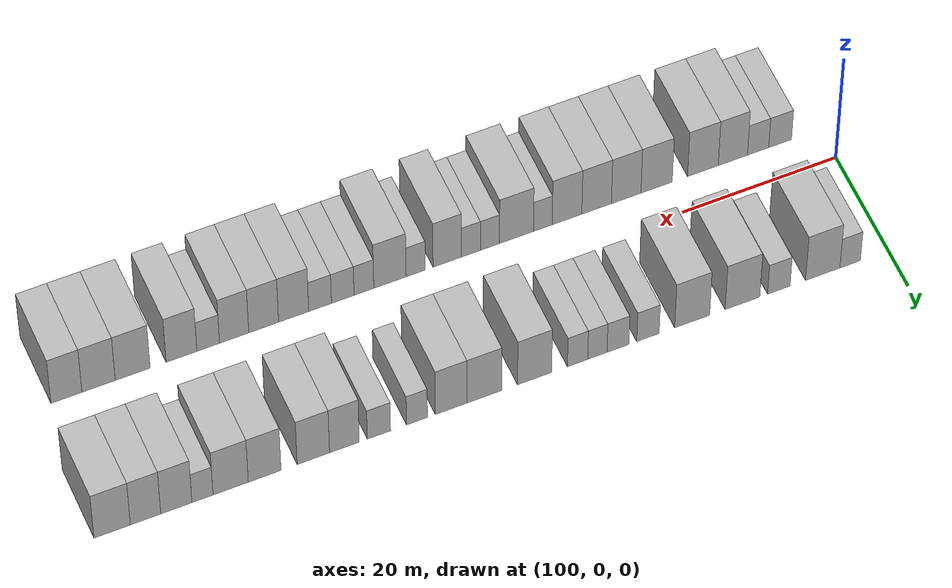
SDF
<sdf version="1.6">
 <world name="default">
  <model name="building_24">
   <static>1</static>
   <pose>104.9488 9.5000 0 0.000000 0.000000 1.570796</pose>
   <link name="link">
    <pose>0 0 3.00 0 0 0</pose>
    <collision name="collision"><geometry><box><size>10.0000 2.6455 6.0000</size></box></geometry></collision>
    <visual name="visual">
     <cast_shadows>0</cast_shadows>
     <geometry><box><size>10.0000 2.6455 6.0000</size></box></geometry>
     <material>
      <script>
       <uri>model://HANNAS_wall/materials/scripts</uri>
       <uri>model://HANNAS_wall/materials/textures</uri>
       <name>vrc/HANNAS_wall</name>
      </script>
     </material>
    </visual>
   </link>
  </model>
  <model name="building_25">
   <static>1</static>
   <pose>108.4998 9.5000 0 0.000000 0.000000 1.570796</pose>
   <link name="link">
    <pose>0 0 4.50 0 0 0</pose>
    <collision name="collision"><geometry><box><size>10.0000 4.4565 9.0000</size></box></geometry></collision>
    <visual name="visual">
     <cast_shadows>0</cast_shadows>
     <geometry><box><size>10.0000 4.4565 9.0000</size></box></geometry>
     <material>
      <script>
       <uri>model://HANNAS_wall/materials/scripts</uri>
       <uri>model://HANNAS_wall/materials/textures</uri>
       <name>vrc/HANNAS_wall</name>
      </script>
     </material>
    </visual>
   </link>
  </model>
  <model name="building_26">
   <static>1</static>
   <pose>114.1830 9.5000 0 0.000000 0.000000 1.570796</pose>
   <link name="link">
    <pose>0 0 3.00 0 0 0</pose>
    <collision name="collision"><geometry><box><size>10.0000 2.9098 6.0000</size></box></geometry></collision>
    <visual name="visual">
     <cast_shadows>0</cast_shadows>
     <geometry><box><size>10.0000 2.9098 6.0000</size></box></geometry>
     <material>
      <script>
       <uri>model://HANNAS_wall/materials/scripts</uri>
       <uri>model://HANNAS_wall/materials/textures</uri>
       <name>vrc/HANNAS_wall</name>
      </script>
     </material>
    </visual>
   </link>
  </model>
  <model name="building_27">
   <static>1</static>
   <pose>118.8690 9.5000 0 0.000000 0.000000 1.570796</pose>
   <link name="link">
    <pose>0 0 4.50 0 0 0</pose>
    <collision name="collision"><geometry><box><size>10.0000 4.4622 9.0000</size></box></geometry></collision>
    <visual name="visual">
     <cast_shadows>0</cast_shadows>
     <geometry><box><size>10.0000 4.4622 9.0000</size></box></geometry>
     <material>
      <script>
       <uri>model://HANNAS_wall/materials/scripts</uri>
       <uri>model://HANNAS_wall/materials/textures</uri>
       <name>vrc/HANNAS_wall</name>
      </script>
     </material>
    </visual>
   </link>
  </model>
  <model name="building_28">
   <static>1</static>
   <pose>125.3372 9.5000 0 0.000000 0.000000 1.570796</pose>
   <link name="link">
    <pose>0 0 4.50 0 0 0</pose>
    <collision name="collision"><geometry><box><size>10.0000 4.4742 9.0000</size></box></geometry></collision>
    <visual name="visual">
     <cast_shadows>0</cast_shadows>
     <geometry><box><size>10.0000 4.4742 9.0000</size></box></geometry>
     <material>
      <script>
       <uri>model://HANNAS_wall/materials/scripts</uri>
       <uri>model://HANNAS_wall/materials/textures</uri>
       <name>vrc/HANNAS_wall</name>
      </script>
     </material>
    </visual>
   </link>
  </model>
  <model name="building_29">
   <static>1</static>
   <pose>131.0073 9.5000 0 0.000000 0.000000 1.570796</pose>
   <link name="link">
    <pose>0 0 3.00 0 0 0</pose>
    <collision name="collision"><geometry><box><size>10.0000 2.8662 6.0000</size></box></geometry></collision>
    <visual name="visual">
     <cast_shadows>0</cast_shadows>
     <geometry><box><size>10.0000 2.8662 6.0000</size></box></geometry>
     <material>
      <script>
       <uri>model://HANNAS_wall/materials/scripts</uri>
       <uri>model://HANNAS_wall/materials/textures</uri>
       <name>vrc/HANNAS_wall</name>
      </script>
     </material>
    </visual>
   </link>
  </model>
  <model name="building_30">
   <static>1</static>
   <pose>134.8333 9.5000 0 0.000000 0.000000 1.570796</pose>
   <link name="link">
    <pose>0 0 3.00 0 0 0</pose>
    <collision name="collision"><geometry><box><size>10.0000 2.7858 6.0000</size></box></geometry></collision>
    <visual name="visual">
     <cast_shadows>0</cast_shadows>
     <geometry><box><size>10.0000 2.7858 6.0000</size></box></geometry>
     <material>
      <script>
       <uri>model://HANNAS_wall/materials/scripts</uri>
       <uri>model://HANNAS_wall/materials/textures</uri>
       <name>vrc/HANNAS_wall</name>
      </script>
     </material>
    </visual>
   </link>
  </model>
  <model name="building_31">
   <static>1</static>
   <pose>137.4578 9.5000 0 0.000000 0.000000 1.570796</pose>
   <link name="link">
    <pose>0 0 3.00 0 0 0</pose>
    <collision name="collision"><geometry><box><size>10.0000 2.4632 6.0000</size></box></geometry></collision>
    <visual name="visual">
     <cast_shadows>0</cast_shadows>
     <geometry><box><size>10.0000 2.4632 6.0000</size></box></geometry>
     <material>
      <script>
       <uri>model://HANNAS_wall/materials/scripts</uri>
       <uri>model://HANNAS_wall/materials/textures</uri>
       <name>vrc/HANNAS_wall</name>
      </script>
     </material>
    </visual>
   </link>
  </model>
  <model name="building_32">
   <static>1</static>
   <pose>139.9773 9.5000 0 0.000000 0.000000 1.570796</pose>
   <link name="link">
    <pose>0 0 3.00 0 0 0</pose>
    <collision name="collision"><geometry><box><size>10.0000 2.5758 6.0000</size></box></geometry></collision>
    <visual name="visual">
     <cast_shadows>0</cast_shadows>
     <geometry><box><size>10.0000 2.5758 6.0000</size></box></geometry>
     <material>
      <script>
       <uri>model://HANNAS_wall/materials/scripts</uri>
       <uri>model://HANNAS_wall/materials/textures</uri>
       <name>vrc/HANNAS_wall</name>
      </script>
     </material>
    </visual>
   </link>
  </model>
  <model name="building_33">
   <static>1</static>
   <pose>145.4262 9.5000 0 0.000000 0.000000 1.570796</pose>
   <link name="link">
    <pose>0 0 4.50 0 0 0</pose>
    <collision name="collision"><geometry><box><size>10.0000 4.3219 9.0000</size></box></geometry></collision>
    <visual name="visual">
     <cast_shadows>0</cast_shadows>
     <geometry><box><size>10.0000 4.3219 9.0000</size></box></geometry>
     <material>
      <script>
       <uri>model://HANNAS_wall/materials/scripts</uri>
       <uri>model://HANNAS_wall/materials/textures</uri>
       <name>vrc/HANNAS_wall</name>
      </script>
     </material>
    </visual>
   </link>
  </model>
  <model name="building_34">
   <static>1</static>
   <pose>151.7672 9.5000 0 0.000000 0.000000 1.570796</pose>
   <link name="link">
    <pose>0 0 4.50 0 0 0</pose>
    <collision name="collision"><geometry><box><size>10.0000 4.3601 9.0000</size></box></geometry></collision>
    <visual name="visual">
     <cast_shadows>0</cast_shadows>
     <geometry><box><size>10.0000 4.3601 9.0000</size></box></geometry>
     <material>
      <script>
       <uri>model://HANNAS_wall/materials/scripts</uri>
       <uri>model://HANNAS_wall/materials/textures</uri>
       <name>vrc/HANNAS_wall</name>
      </script>
     </material>
    </visual>
   </link>
  </model>
  <model name="building_35">
   <static>1</static>
   <pose>155.9429 9.5000 0 0.000000 0.000000 1.570796</pose>
   <link name="link">
    <pose>0 0 4.50 0 0 0</pose>
    <collision name="collision"><geometry><box><size>10.0000 3.9913 9.0000</size></box></geometry></collision>
    <visual name="visual">
     <cast_shadows>0</cast_shadows>
     <geometry><box><size>10.0000 3.9913 9.0000</size></box></geometry>
     <material>
      <script>
       <uri>model://HANNAS_wall/materials/scripts</uri>
       <uri>model://HANNAS_wall/materials/textures</uri>
       <name>vrc/HANNAS_wall</name>
      </script>
     </material>
    </visual>
   </link>
  </model>
  <model name="building_36">
   <static>1</static>
   <pose>160.2535 9.5000 0 0.000000 0.000000 1.570796</pose>
   <link name="link">
    <pose>0 0 3.00 0 0 0</pose>
    <collision name="collision"><geometry><box><size>10.0000 2.6299 6.0000</size></box></geometry></collision>
    <visual name="visual">
     <cast_shadows>0</cast_shadows>
     <geometry><box><size>10.0000 2.6299 6.0000</size></box></geometry>
     <material>
      <script>
       <uri>model://HANNAS_wall/materials/scripts</uri>
       <uri>model://HANNAS_wall/materials/textures</uri>
       <name>vrc/HANNAS_wall</name>
      </script>
     </material>
    </visual>
   </link>
  </model>
  <model name="building_37">
   <static>1</static>
   <pose>165.0209 9.5000 0 0.000000 0.000000 1.570796</pose>
   <link name="link">
    <pose>0 0 3.00 0 0 0</pose>
    <collision name="collision"><geometry><box><size>10.0000 2.9050 6.0000</size></box></geometry></collision>
    <visual name="visual">
     <cast_shadows>0</cast_shadows>
     <geometry><box><size>10.0000 2.9050 6.0000</size></box></geometry>
     <material>
      <script>
       <uri>model://HANNAS_wall/materials/scripts</uri>
       <uri>model://HANNAS_wall/materials/textures</uri>
       <name>vrc/HANNAS_wall</name>
      </script>
     </material>
    </visual>
   </link>
  </model>
  <model name="building_38">
   <static>1</static>
   <pose>169.3303 9.5000 0 0.000000 0.000000 1.570796</pose>
   <link name="link">
    <pose>0 0 4.50 0 0 0</pose>
    <collision name="collision"><geometry><box><size>10.0000 3.7138 9.0000</size></box></geometry></collision>
    <visual name="visual">
     <cast_shadows>0</cast_shadows>
     <geometry><box><size>10.0000 3.7138 9.0000</size></box></geometry>
     <material>
      <script>
       <uri>model://HANNAS_wall/materials/scripts</uri>
       <uri>model://HANNAS_wall/materials/textures</uri>
       <name>vrc/HANNAS_wall</name>
      </script>
     </material>
    </visual>
   </link>
  </model>
  <model name="building_39">
   <static>1</static>
   <pose>173.2025 9.5000 0 0.000000 0.000000 1.570796</pose>
   <link name="link">
    <pose>0 0 4.50 0 0 0</pose>
    <collision name="collision"><geometry><box><size>10.0000 4.0307 9.0000</size></box></geometry></collision>
    <visual name="visual">
     <cast_shadows>0</cast_shadows>
     <geometry><box><size>10.0000 4.0307 9.0000</size></box></geometry>
     <material>
      <script>
       <uri>model://HANNAS_wall/materials/scripts</uri>
       <uri>model://HANNAS_wall/materials/textures</uri>
       <name>vrc/HANNAS_wall</name>
      </script>
     </material>
    </visual>
   </link>
  </model>
  <model name="building_40">
   <static>1</static>
   <pose>179.2493 9.5000 0 0.000000 0.000000 1.570796</pose>
   <link name="link">
    <pose>0 0 4.50 0 0 0</pose>
    <collision name="collision"><geometry><box><size>10.0000 4.0628 9.0000</size></box></geometry></collision>
    <visual name="visual">
     <cast_shadows>0</cast_shadows>
     <geometry><box><size>10.0000 4.0628 9.0000</size></box></geometry>
     <material>
      <script>
       <uri>model://HANNAS_wall/materials/scripts</uri>
       <uri>model://HANNAS_wall/materials/textures</uri>
       <name>vrc/HANNAS_wall</name>
      </script>
     </material>
    </visual>
   </link>
  </model>
  <model name="building_41">
   <static>1</static>
   <pose>183.4597 9.5000 0 0.000000 0.000000 1.570796</pose>
   <link name="link">
    <pose>0 0 4.50 0 0 0</pose>
    <collision name="collision"><geometry><box><size>10.0000 4.3580 9.0000</size></box></geometry></collision>
    <visual name="visual">
     <cast_shadows>0</cast_shadows>
     <geometry><box><size>10.0000 4.3580 9.0000</size></box></geometry>
     <material>
      <script>
       <uri>model://HANNAS_wall/materials/scripts</uri>
       <uri>model://HANNAS_wall/materials/textures</uri>
       <name>vrc/HANNAS_wall</name>
      </script>
     </material>
    </visual>
   </link>
  </model>
  <model name="building_42">
   <static>1</static>
   <pose>186.9390 9.5000 0 0.000000 0.000000 1.570796</pose>
   <link name="link">
    <pose>0 0 3.00 0 0 0</pose>
    <collision name="collision"><geometry><box><size>10.0000 2.6006 6.0000</size></box></geometry></collision>
    <visual name="visual">
     <cast_shadows>0</cast_shadows>
     <geometry><box><size>10.0000 2.6006 6.0000</size></box></geometry>
     <material>
      <script>
       <uri>model://HANNAS_wall/materials/scripts</uri>
       <uri>model://HANNAS_wall/materials/textures</uri>
       <name>vrc/HANNAS_wall</name>
      </script>
     </material>
    </visual>
   </link>
  </model>
  <model name="building_43">
   <static>1</static>
   <pose>190.1605 9.5000 0 0.000000 0.000000 1.570796</pose>
   <link name="link">
    <pose>0 0 4.50 0 0 0</pose>
    <collision name="collision"><geometry><box><size>10.0000 3.8426 9.0000</size></box></geometry></collision>
    <visual name="visual">
     <cast_shadows>0</cast_shadows>
     <geometry><box><size>10.0000 3.8426 9.0000</size></box></geometry>
     <material>
      <script>
       <uri>model://HANNAS_wall/materials/scripts</uri>
       <uri>model://HANNAS_wall/materials/textures</uri>
       <name>vrc/HANNAS_wall</name>
      </script>
     </material>
    </visual>
   </link>
  </model>
  <model name="building_44">
   <static>1</static>
   <pose>193.9498 9.5000 0 0.000000 0.000000 1.570796</pose>
   <link name="link">
    <pose>0 0 4.50 0 0 0</pose>
    <collision name="collision"><geometry><box><size>10.0000 3.7360 9.0000</size></box></geometry></collision>
    <visual name="visual">
     <cast_shadows>0</cast_shadows>
     <geometry><box><size>10.0000 3.7360 9.0000</size></box></geometry>
     <material>
      <script>
       <uri>model://HANNAS_wall/materials/scripts</uri>
       <uri>model://HANNAS_wall/materials/textures</uri>
       <name>vrc/HANNAS_wall</name>
      </script>
     </material>
    </visual>
   </link>
  </model>
  <model name="building_45">
   <static>1</static>
   <pose>198.0489 9.5000 0 0.000000 0.000000 1.570796</pose>
   <link name="link">
    <pose>0 0 4.50 0 0 0</pose>
    <collision name="collision"><geometry><box><size>10.0000 4.4622 9.0000</size></box></geometry></collision>
    <visual name="visual">
     <cast_shadows>0</cast_shadows>
     <geometry><box><size>10.0000 4.4622 9.0000</size></box></geometry>
     <material>
      <script>
       <uri>model://HANNAS_wall/materials/scripts</uri>
       <uri>model://HANNAS_wall/materials/textures</uri>
       <name>vrc/HANNAS_wall</name>
      </script>
     </material>
    </visual>
   </link>
  </model>
  <model name="building_71">
   <static>1</static>
   <pose>105.1992 -9.5000 0 0.000000 0.000000 1.570796</pose>
   <link name="link">
    <pose>0 0 3.00 0 0 0</pose>
    <collision name="collision"><geometry><box><size>10.0000 2.9920 6.0000</size></box></geometry></collision>
    <visual name="visual">
     <cast_shadows>0</cast_shadows>
     <geometry><box><size>10.0000 2.9920 6.0000</size></box></geometry>
     <material>
      <script>
       <uri>model://HANNAS_wall/materials/scripts</uri>
       <uri>model://HANNAS_wall/materials/textures</uri>
       <name>vrc/HANNAS_wall</name>
      </script>
     </material>
    </visual>
   </link>
  </model>
  <model name="building_72">
   <static>1</static>
   <pose>108.0806 -9.5000 0 0.000000 0.000000 1.570796</pose>
   <link name="link">
    <pose>0 0 3.00 0 0 0</pose>
    <collision name="collision"><geometry><box><size>10.0000 2.7708 6.0000</size></box></geometry></collision>
    <visual name="visual">
     <cast_shadows>0</cast_shadows>
     <geometry><box><size>10.0000 2.7708 6.0000</size></box></geometry>
     <material>
      <script>
       <uri>model://HANNAS_wall/materials/scripts</uri>
       <uri>model://HANNAS_wall/materials/textures</uri>
       <name>vrc/HANNAS_wall</name>
      </script>
     </material>
    </visual>
   </link>
  </model>
  <model name="building_73">
   <static>1</static>
   <pose>111.3793 -9.5000 0 0.000000 0.000000 1.570796</pose>
   <link name="link">
    <pose>0 0 4.50 0 0 0</pose>
    <collision name="collision"><geometry><box><size>10.0000 3.8265 9.0000</size></box></geometry></collision>
    <visual name="visual">
     <cast_shadows>0</cast_shadows>
     <geometry><box><size>10.0000 3.8265 9.0000</size></box></geometry>
     <material>
      <script>
       <uri>model://HANNAS_wall/materials/scripts</uri>
       <uri>model://HANNAS_wall/materials/textures</uri>
       <name>vrc/HANNAS_wall</name>
      </script>
     </material>
    </visual>
   </link>
  </model>
  <model name="building_74">
   <static>1</static>
   <pose>115.2952 -9.5000 0 0.000000 0.000000 1.570796</pose>
   <link name="link">
    <pose>0 0 4.50 0 0 0</pose>
    <collision name="collision"><geometry><box><size>10.0000 4.0053 9.0000</size></box></geometry></collision>
    <visual name="visual">
     <cast_shadows>0</cast_shadows>
     <geometry><box><size>10.0000 4.0053 9.0000</size></box></geometry>
     <material>
      <script>
       <uri>model://HANNAS_wall/materials/scripts</uri>
       <uri>model://HANNAS_wall/materials/textures</uri>
       <name>vrc/HANNAS_wall</name>
      </script>
     </material>
    </visual>
   </link>
  </model>
  <model name="building_75">
   <static>1</static>
   <pose>121.3328 -9.5000 0 0.000000 0.000000 1.570796</pose>
   <link name="link">
    <pose>0 0 4.50 0 0 0</pose>
    <collision name="collision"><geometry><box><size>10.0000 4.0700 9.0000</size></box></geometry></collision>
    <visual name="visual">
     <cast_shadows>0</cast_shadows>
     <geometry><box><size>10.0000 4.0700 9.0000</size></box></geometry>
     <material>
      <script>
       <uri>model://HANNAS_wall/materials/scripts</uri>
       <uri>model://HANNAS_wall/materials/textures</uri>
       <name>vrc/HANNAS_wall</name>
      </script>
     </material>
    </visual>
   </link>
  </model>
  <model name="building_76">
   <static>1</static>
   <pose>125.2840 -9.5000 0 0.000000 0.000000 1.570796</pose>
   <link name="link">
    <pose>0 0 4.50 0 0 0</pose>
    <collision name="collision"><geometry><box><size>10.0000 3.8323 9.0000</size></box></geometry></collision>
    <visual name="visual">
     <cast_shadows>0</cast_shadows>
     <geometry><box><size>10.0000 3.8323 9.0000</size></box></geometry>
     <material>
      <script>
       <uri>model://HANNAS_wall/materials/scripts</uri>
       <uri>model://HANNAS_wall/materials/textures</uri>
       <name>vrc/HANNAS_wall</name>
      </script>
     </material>
    </visual>
   </link>
  </model>
  <model name="building_77">
   <static>1</static>
   <pose>129.1165 -9.5000 0 0.000000 0.000000 1.570796</pose>
   <link name="link">
    <pose>0 0 4.50 0 0 0</pose>
    <collision name="collision"><geometry><box><size>10.0000 3.8327 9.0000</size></box></geometry></collision>
    <visual name="visual">
     <cast_shadows>0</cast_shadows>
     <geometry><box><size>10.0000 3.8327 9.0000</size></box></geometry>
     <material>
      <script>
       <uri>model://HANNAS_wall/materials/scripts</uri>
       <uri>model://HANNAS_wall/materials/textures</uri>
       <name>vrc/HANNAS_wall</name>
      </script>
     </material>
    </visual>
   </link>
  </model>
  <model name="building_78">
   <static>1</static>
   <pose>132.9467 -9.5000 0 0.000000 0.000000 1.570796</pose>
   <link name="link">
    <pose>0 0 4.50 0 0 0</pose>
    <collision name="collision"><geometry><box><size>10.0000 3.8278 9.0000</size></box></geometry></collision>
    <visual name="visual">
     <cast_shadows>0</cast_shadows>
     <geometry><box><size>10.0000 3.8278 9.0000</size></box></geometry>
     <material>
      <script>
       <uri>model://HANNAS_wall/materials/scripts</uri>
       <uri>model://HANNAS_wall/materials/textures</uri>
       <name>vrc/HANNAS_wall</name>
      </script>
     </material>
    </visual>
   </link>
  </model>
  <model name="building_79">
   <static>1</static>
   <pose>136.0624 -9.5000 0 0.000000 0.000000 1.570796</pose>
   <link name="link">
    <pose>0 0 3.00 0 0 0</pose>
    <collision name="collision"><geometry><box><size>10.0000 2.4036 6.0000</size></box></geometry></collision>
    <visual name="visual">
     <cast_shadows>0</cast_shadows>
     <geometry><box><size>10.0000 2.4036 6.0000</size></box></geometry>
     <material>
      <script>
       <uri>model://HANNAS_wall/materials/scripts</uri>
       <uri>model://HANNAS_wall/materials/textures</uri>
       <name>vrc/HANNAS_wall</name>
      </script>
     </material>
    </visual>
   </link>
  </model>
  <model name="building_80">
   <static>1</static>
   <pose>139.4486 -9.5000 0 0.000000 0.000000 1.570796</pose>
   <link name="link">
    <pose>0 0 4.50 0 0 0</pose>
    <collision name="collision"><geometry><box><size>10.0000 4.3690 9.0000</size></box></geometry></collision>
    <visual name="visual">
     <cast_shadows>0</cast_shadows>
     <geometry><box><size>10.0000 4.3690 9.0000</size></box></geometry>
     <material>
      <script>
       <uri>model://HANNAS_wall/materials/scripts</uri>
       <uri>model://HANNAS_wall/materials/textures</uri>
       <name>vrc/HANNAS_wall</name>
      </script>
     </material>
    </visual>
   </link>
  </model>
  <model name="building_81">
   <static>1</static>
   <pose>142.8561 -9.5000 0 0.000000 0.000000 1.570796</pose>
   <link name="link">
    <pose>0 0 3.00 0 0 0</pose>
    <collision name="collision"><geometry><box><size>10.0000 2.4460 6.0000</size></box></geometry></collision>
    <visual name="visual">
     <cast_shadows>0</cast_shadows>
     <geometry><box><size>10.0000 2.4460 6.0000</size></box></geometry>
     <material>
      <script>
       <uri>model://HANNAS_wall/materials/scripts</uri>
       <uri>model://HANNAS_wall/materials/textures</uri>
       <name>vrc/HANNAS_wall</name>
      </script>
     </material>
    </visual>
   </link>
  </model>
  <model name="building_82">
   <static>1</static>
   <pose>145.2942 -9.5000 0 0.000000 0.000000 1.570796</pose>
   <link name="link">
    <pose>0 0 3.00 0 0 0</pose>
    <collision name="collision"><geometry><box><size>10.0000 2.4302 6.0000</size></box></geometry></collision>
    <visual name="visual">
     <cast_shadows>0</cast_shadows>
     <geometry><box><size>10.0000 2.4302 6.0000</size></box></geometry>
     <material>
      <script>
       <uri>model://HANNAS_wall/materials/scripts</uri>
       <uri>model://HANNAS_wall/materials/textures</uri>
       <name>vrc/HANNAS_wall</name>
      </script>
     </material>
    </visual>
   </link>
  </model>
  <model name="building_83">
   <static>1</static>
   <pose>148.3256 -9.5000 0 0.000000 0.000000 1.570796</pose>
   <link name="link">
    <pose>0 0 4.50 0 0 0</pose>
    <collision name="collision"><geometry><box><size>10.0000 3.6325 9.0000</size></box></geometry></collision>
    <visual name="visual">
     <cast_shadows>0</cast_shadows>
     <geometry><box><size>10.0000 3.6325 9.0000</size></box></geometry>
     <material>
      <script>
       <uri>model://HANNAS_wall/materials/scripts</uri>
       <uri>model://HANNAS_wall/materials/textures</uri>
       <name>vrc/HANNAS_wall</name>
      </script>
     </material>
    </visual>
   </link>
  </model>
  <model name="building_84">
   <static>1</static>
   <pose>152.3566 -9.5000 0 0.000000 0.000000 1.570796</pose>
   <link name="link">
    <pose>0 0 3.00 0 0 0</pose>
    <collision name="collision"><geometry><box><size>10.0000 2.4294 6.0000</size></box></geometry></collision>
    <visual name="visual">
     <cast_shadows>0</cast_shadows>
     <geometry><box><size>10.0000 2.4294 6.0000</size></box></geometry>
     <material>
      <script>
       <uri>model://HANNAS_wall/materials/scripts</uri>
       <uri>model://HANNAS_wall/materials/textures</uri>
       <name>vrc/HANNAS_wall</name>
      </script>
     </material>
    </visual>
   </link>
  </model>
  <model name="building_85">
   <static>1</static>
   <pose>155.6257 -9.5000 0 0.000000 0.000000 1.570796</pose>
   <link name="link">
    <pose>0 0 4.50 0 0 0</pose>
    <collision name="collision"><geometry><box><size>10.0000 4.1089 9.0000</size></box></geometry></collision>
    <visual name="visual">
     <cast_shadows>0</cast_shadows>
     <geometry><box><size>10.0000 4.1089 9.0000</size></box></geometry>
     <material>
      <script>
       <uri>model://HANNAS_wall/materials/scripts</uri>
       <uri>model://HANNAS_wall/materials/textures</uri>
       <name>vrc/HANNAS_wall</name>
      </script>
     </material>
    </visual>
   </link>
  </model>
  <model name="building_86">
   <static>1</static>
   <pose>158.9372 -9.5000 0 0.000000 0.000000 1.570796</pose>
   <link name="link">
    <pose>0 0 3.00 0 0 0</pose>
    <collision name="collision"><geometry><box><size>10.0000 2.5140 6.0000</size></box></geometry></collision>
    <visual name="visual">
     <cast_shadows>0</cast_shadows>
     <geometry><box><size>10.0000 2.5140 6.0000</size></box></geometry>
     <material>
      <script>
       <uri>model://HANNAS_wall/materials/scripts</uri>
       <uri>model://HANNAS_wall/materials/textures</uri>
       <name>vrc/HANNAS_wall</name>
      </script>
     </material>
    </visual>
   </link>
  </model>
  <model name="building_87">
   <static>1</static>
   <pose>161.6271 -9.5000 0 0.000000 0.000000 1.570796</pose>
   <link name="link">
    <pose>0 0 3.00 0 0 0</pose>
    <collision name="collision"><geometry><box><size>10.0000 2.8659 6.0000</size></box></geometry></collision>
    <visual name="visual">
     <cast_shadows>0</cast_shadows>
     <geometry><box><size>10.0000 2.8659 6.0000</size></box></geometry>
     <material>
      <script>
       <uri>model://HANNAS_wall/materials/scripts</uri>
       <uri>model://HANNAS_wall/materials/textures</uri>
       <name>vrc/HANNAS_wall</name>
      </script>
     </material>
    </visual>
   </link>
  </model>
  <model name="building_88">
   <static>1</static>
   <pose>164.4961 -9.5000 0 0.000000 0.000000 1.570796</pose>
   <link name="link">
    <pose>0 0 3.00 0 0 0</pose>
    <collision name="collision"><geometry><box><size>10.0000 2.8721 6.0000</size></box></geometry></collision>
    <visual name="visual">
     <cast_shadows>0</cast_shadows>
     <geometry><box><size>10.0000 2.8721 6.0000</size></box></geometry>
     <material>
      <script>
       <uri>model://HANNAS_wall/materials/scripts</uri>
       <uri>model://HANNAS_wall/materials/textures</uri>
       <name>vrc/HANNAS_wall</name>
      </script>
     </material>
    </visual>
   </link>
  </model>
  <model name="building_89">
   <static>1</static>
   <pose>167.8395 -9.5000 0 0.000000 0.000000 1.570796</pose>
   <link name="link">
    <pose>0 0 4.50 0 0 0</pose>
    <collision name="collision"><geometry><box><size>10.0000 3.8147 9.0000</size></box></geometry></collision>
    <visual name="visual">
     <cast_shadows>0</cast_shadows>
     <geometry><box><size>10.0000 3.8147 9.0000</size></box></geometry>
     <material>
      <script>
       <uri>model://HANNAS_wall/materials/scripts</uri>
       <uri>model://HANNAS_wall/materials/textures</uri>
       <name>vrc/HANNAS_wall</name>
      </script>
     </material>
    </visual>
   </link>
  </model>
  <model name="building_90">
   <static>1</static>
   <pose>171.6229 -9.5000 0 0.000000 0.000000 1.570796</pose>
   <link name="link">
    <pose>0 0 4.50 0 0 0</pose>
    <collision name="collision"><geometry><box><size>10.0000 3.7521 9.0000</size></box></geometry></collision>
    <visual name="visual">
     <cast_shadows>0</cast_shadows>
     <geometry><box><size>10.0000 3.7521 9.0000</size></box></geometry>
     <material>
      <script>
       <uri>model://HANNAS_wall/materials/scripts</uri>
       <uri>model://HANNAS_wall/materials/textures</uri>
       <name>vrc/HANNAS_wall</name>
      </script>
     </material>
    </visual>
   </link>
  </model>
  <model name="building_91">
   <static>1</static>
   <pose>175.3381 -9.5000 0 0.000000 0.000000 1.570796</pose>
   <link name="link">
    <pose>0 0 4.50 0 0 0</pose>
    <collision name="collision"><geometry><box><size>10.0000 3.6783 9.0000</size></box></geometry></collision>
    <visual name="visual">
     <cast_shadows>0</cast_shadows>
     <geometry><box><size>10.0000 3.6783 9.0000</size></box></geometry>
     <material>
      <script>
       <uri>model://HANNAS_wall/materials/scripts</uri>
       <uri>model://HANNAS_wall/materials/textures</uri>
       <name>vrc/HANNAS_wall</name>
      </script>
     </material>
    </visual>
   </link>
  </model>
  <model name="building_92">
   <static>1</static>
   <pose>178.5976 -9.5000 0 0.000000 0.000000 1.570796</pose>
   <link name="link">
    <pose>0 0 3.00 0 0 0</pose>
    <collision name="collision"><geometry><box><size>10.0000 2.8407 6.0000</size></box></geometry></collision>
    <visual name="visual">
     <cast_shadows>0</cast_shadows>
     <geometry><box><size>10.0000 2.8407 6.0000</size></box></geometry>
     <material>
      <script>
       <uri>model://HANNAS_wall/materials/scripts</uri>
       <uri>model://HANNAS_wall/materials/textures</uri>
       <name>vrc/HANNAS_wall</name>
      </script>
     </material>
    </visual>
   </link>
  </model>
  <model name="building_93">
   <static>1</static>
   <pose>181.9457 -9.5000 0 0.000000 0.000000 1.570796</pose>
   <link name="link">
    <pose>0 0 4.50 0 0 0</pose>
    <collision name="collision"><geometry><box><size>10.0000 3.8556 9.0000</size></box></geometry></collision>
    <visual name="visual">
     <cast_shadows>0</cast_shadows>
     <geometry><box><size>10.0000 3.8556 9.0000</size></box></geometry>
     <material>
      <script>
       <uri>model://HANNAS_wall/materials/scripts</uri>
       <uri>model://HANNAS_wall/materials/textures</uri>
       <name>vrc/HANNAS_wall</name>
      </script>
     </material>
    </visual>
   </link>
  </model>
  <model name="building_94">
   <static>1</static>
   <pose>188.0481 -9.5000 0 0.000000 0.000000 1.570796</pose>
   <link name="link">
    <pose>0 0 4.50 0 0 0</pose>
    <collision name="collision"><geometry><box><size>10.0000 4.3491 9.0000</size></box></geometry></collision>
    <visual name="visual">
     <cast_shadows>0</cast_shadows>
     <geometry><box><size>10.0000 4.3491 9.0000</size></box></geometry>
     <material>
      <script>
       <uri>model://HANNAS_wall/materials/scripts</uri>
       <uri>model://HANNAS_wall/materials/textures</uri>
       <name>vrc/HANNAS_wall</name>
      </script>
     </material>
    </visual>
   </link>
  </model>
  <model name="building_95">
   <static>1</static>
   <pose>192.2954 -9.5000 0 0.000000 0.000000 1.570796</pose>
   <link name="link">
    <pose>0 0 4.50 0 0 0</pose>
    <collision name="collision"><geometry><box><size>10.0000 4.1456 9.0000</size></box></geometry></collision>
    <visual name="visual">
     <cast_shadows>0</cast_shadows>
     <geometry><box><size>10.0000 4.1456 9.0000</size></box></geometry>
     <material>
      <script>
       <uri>model://HANNAS_wall/materials/scripts</uri>
       <uri>model://HANNAS_wall/materials/textures</uri>
       <name>vrc/HANNAS_wall</name>
      </script>
     </material>
    </visual>
   </link>
  </model>
  <model name="building_96">
   <static>1</static>
   <pose>196.2934 -9.5000 0 0.000000 0.000000 1.570796</pose>
   <link name="link">
    <pose>0 0 4.50 0 0 0</pose>
    <collision name="collision"><geometry><box><size>10.0000 3.8502 9.0000</size></box></geometry></collision>
    <visual name="visual">
     <cast_shadows>0</cast_shadows>
     <geometry><box><size>10.0000 3.8502 9.0000</size></box></geometry>
     <material>
      <script>
       <uri>model://HANNAS_wall/materials/scripts</uri>
       <uri>model://HANNAS_wall/materials/textures</uri>
       <name>vrc/HANNAS_wall</name>
      </script>
     </material>
    </visual>
   </link>
  </model>
 </world>
</sdf>
